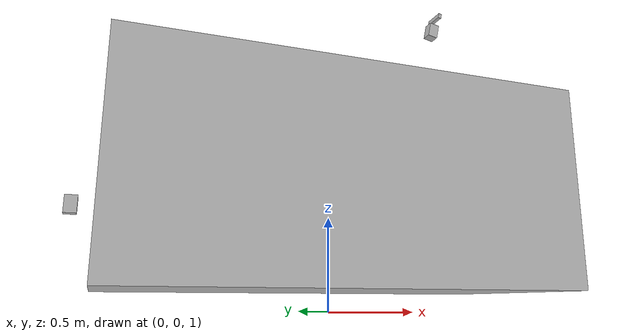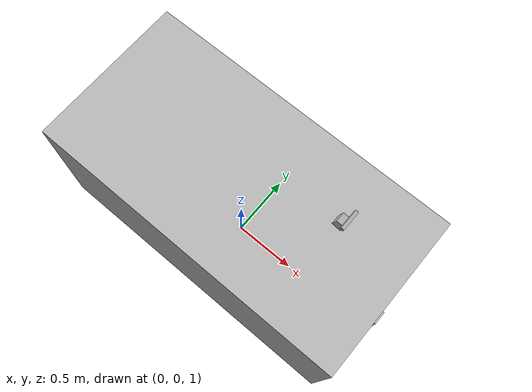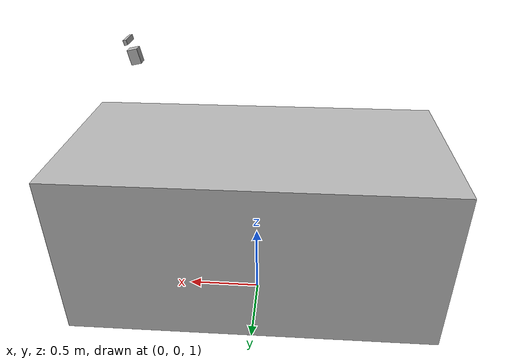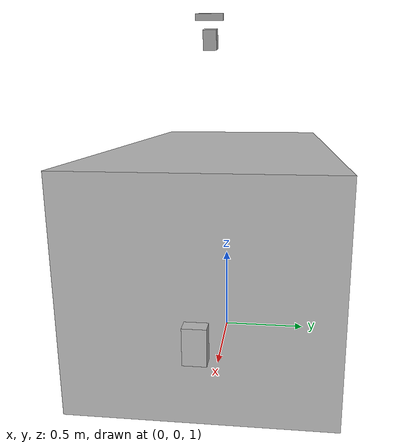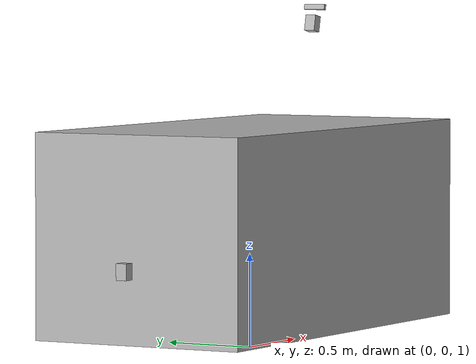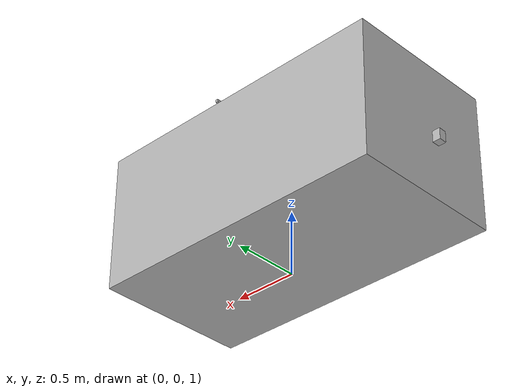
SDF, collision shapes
<?xml version="1.0" ?>
<sdf version="1.5">
  <model name="Drive2PowerTech">
    <pose>0 0 2 0 0 0</pose>
    <link name="link">
      <inertial>
        <pose>0 0 0 0 0 0</pose>
        <mass>300</mass>
        <inertia>
          <ixx>25</ixx>
          <ixy>0</ixy>
          <ixz>0</ixz>
          <iyy>25</iyy>
          <iyz>0</iyz>
          <izz>25</izz>
        </inertia>
      </inertial>
      <collision name="collision">
        <pose>0 0 -0.35 0 0 0</pose>
        <geometry>
          <box>
            <size>2.38 1.2 1.08</size>
          </box>
        </geometry>
      </collision>
      <visual name="visual">
        <pose>-1.2375 0.65 -0.89 1.570796 0 0</pose>
        <geometry>
          <mesh>
            <uri>model://Drive2PowerTech/meshes/golfcar.dae</uri>
          </mesh>
        </geometry>
      </visual>
    </link>
    <link name="LMS">
      <pose>1.2 0 -0.5 0 0 0</pose>
      <collision name="collision">
        <geometry>
          <box>
            <size>0.105 0.102 0.162</size>
          </box>
        </geometry>
      </collision>
      <visual name="visual">
      <pose>-0.05 0.058815 0 0 0 -1.570796</pose>
      <geometry>
        <mesh>
          <uri>model://Drive2PowerTech/meshes/LMS.dae</uri>
        </mesh>
      </geometry>
    </visual>
    <sensor type="ray" name="sensor">

      <pose>0 0 -0.004645 0 0 0</pose>

      <!-- Enable visualization to see the rays in the GUI -->
      <visualize>true</visualize>

      <!-- Set the update rate of the sensor -->
      <update_rate>50</update_rate>
              <ray>

        <!-- The scan element contains the horizontal and vertical beams.
             We are leaving out the vertical beams for this tutorial. -->
        <scan>

          <!-- The horizontal beams -->
          <horizontal>
            <!-- The velodyne has 32 beams(samples) -->
            <samples>360</samples>

            <resolution>1</resolution>

            <!-- Minimum angle in radians -->
            <min_angle>-1.570796</min_angle>

            <!-- Maximum angle in radians -->
            <max_angle>1.570796</max_angle>
          </horizontal>
        </scan>

        <!-- Range defines characteristics of an individual beam -->
        <range>

          <!-- Minimum distance of the beam -->
          <min>0.5</min>

          <!-- Maximum distance of the beam -->
          <max>50</max>

          <!-- Linear resolution of the beam -->
          <resolution>0.02</resolution>
        </range>
      </ray>
    </sensor>
    </link>
    <joint type="fixed" name="lms_mount">
        <pose>0 0 0 0 0 0</pose>
        <child>LMS</child>
        <parent>link</parent>
      </joint>

      <link name="TIM">
        <pose>0.7 0 0.72 0 0.2094395 0</pose>
        <collision name="collision">
          <geometry>
            <box>
              <size>0.060 0.060 0.086</size>
            </box>
          </geometry>
        </collision>
        <visual name="visual">
        <pose>0 0 0 1.570796 0 0</pose>
        <geometry>
          <mesh>
            <uri>model://Drive2PowerTech/meshes/TIM.dae</uri>
          </mesh>
        </geometry>
      </visual>
      <sensor type="ray" name="sensor">

        <pose>0 0 -0.004645 0 0 0</pose>

        <!-- Enable visualization to see the rays in the GUI -->
        <visualize>true</visualize>

        <!-- Set the update rate of the sensor -->
        <update_rate>15</update_rate>
                <ray>

          <!-- The scan element contains the horizontal and vertical beams.
               We are leaving out the vertical beams for this tutorial. -->
          <scan>

            <!-- The horizontal beams -->
            <horizontal>
              <!-- The velodyne has 32 beams(samples) -->
              <samples>180</samples>

              <resolution>1</resolution>

              <!-- Minimum angle in radians -->
              <min_angle>-1.570796</min_angle>

              <!-- Maximum angle in radians -->
              <max_angle>1.570796</max_angle>
            </horizontal>
          </scan>

          <!-- Range defines characteristics of an individual beam -->
          <range>

            <!-- Minimum distance of the beam -->
            <min>0.05</min>

            <!-- Maximum distance of the beam -->
            <max>10</max>

            <!-- Linear resolution of the beam -->
            <resolution>0.02</resolution>
          </range>
        </ray>
      </sensor>
    </link>
    <joint type="fixed" name="tim_mount">
        <pose>0 0 0 0 0 0</pose>
        <child>TIM</child>
        <parent>link</parent>
      </joint>

      <link name="D455">
        <pose>0.73 0 0.81 0 0.2094395 0</pose>
        <collision name="collision">
          <pose>0 0 0 0 0 1.570796</pose>
          <geometry>
            <box>
              <size>0.124 0.020 0.029</size>
            </box>
          </geometry>
        </collision>
        <visual name="visual">
        <pose>-0.0145 0 0 1.570796 0 -1.570796</pose>
        <geometry>
          <mesh>
            <uri>model://Drive2PowerTech/meshes/D455.dae</uri>
          </mesh>
        </geometry>
      </visual>
      <sensor name="camera" type="depth">
        <update_rate>30</update_rate>
        <!-- The REALSENSE has up to 90fps but this is alot for a SIM -->
        <camera>
          <horizontal_fov>1.500983</horizontal_fov>
          <image>
            <width>1280</width>
            <height>720</height>
            <format>R8G8B8</format>
          </image>
          <clip>
            <near>0.4</near>
            <far>20.0</far>
          </clip>
        </camera>
        <plugin name="camera_plugin" filename="libgazebo_ros_openni_kinect.so">
          <baseline>0.2</baseline>
          <alwaysOn>true</alwaysOn>
          <updateRate>0.0</updateRate>
          <cameraName>camera_ir</cameraName>
          <imageTopicName>/camera/color/image_raw</imageTopicName>
          <cameraInfoTopicName>/camera/color/camera_info</cameraInfoTopicName>
          <depthImageTopicName>/camera/depth/image_raw</depthImageTopicName>
          <depthImageCameraInfoTopicName>/camera/depth/camera_info</depthImageCameraInfoTopicName>
          <pointCloudTopicName>/camera/depth/points</pointCloudTopicName>
          <frameName>camera_link</frameName>
          <pointCloudCutoff>0.4</pointCloudCutoff>
          <pointCloudCutoffMax>20.0</pointCloudCutoffMax>
          <distortionK1>0</distortionK1>
          <distortionK2>0</distortionK2>
          <distortionK3>0</distortionK3>
          <distortionT1>0</distortionT1>
          <distortionT2>0</distortionT2>
          <CxPrime>0</CxPrime>
          <Cx>0</Cx>
          <Cy>0</Cy>
          <focalLength>0</focalLength>
          <hackBaseline>0</hackBaseline>
        </plugin>
      </sensor>
    </link>
    <joint type="fixed" name="D455_mount">
        <pose>0 0 0 0 0 0</pose>
        <child>D455</child>
        <parent>link</parent>
      </joint>

      <link name="TIM_rear">
        <pose>-1.3 0 -0.5 0 0 3.141593</pose>
        <collision name="collision">
          <geometry>
            <box>
              <size>0.060 0.060 0.086</size>
            </box>
          </geometry>
        </collision>
        <visual name="visual">
        <pose>0 0 0 1.570796 0 0</pose>
        <geometry>
          <mesh>
            <uri>model://Drive2PowerTech/meshes/TIM.dae</uri>
          </mesh>
        </geometry>
      </visual>
      <sensor type="ray" name="sensor">

        <pose>0 0 -0.004645 0 0 0</pose>

        <!-- Enable visualization to see the rays in the GUI -->
        <visualize>true</visualize>

        <!-- Set the update rate of the sensor -->
        <update_rate>15</update_rate>
                <ray>

          <!-- The scan element contains the horizontal and vertical beams.
               We are leaving out the vertical beams for this tutorial. -->
          <scan>

            <!-- The horizontal beams -->
            <horizontal>
              <!-- The velodyne has 32 beams(samples) -->
              <samples>5</samples>

              <resolution>1</resolution>

              <!-- Minimum angle in radians -->
              <min_angle>1.570796</min_angle>

              <!-- Maximum angle in radians -->
              <max_angle>1.48353</max_angle>
            </horizontal>
          </scan>

          <!-- Range defines characteristics of an individual beam -->
          <range>

            <!-- Minimum distance of the beam -->
            <min>0.05</min>

            <!-- Maximum distance of the beam -->
            <max>10</max>

            <!-- Linear resolution of the beam -->
            <resolution>0.02</resolution>
          </range>
        </ray>
      </sensor>
    </link>
    <joint type="fixed" name="tim_rear_mount">
        <pose>0 0 0 0 0 0</pose>
        <child>TIM_rear</child>
        <parent>link</parent>
      </joint>
  </model>
</sdf>
